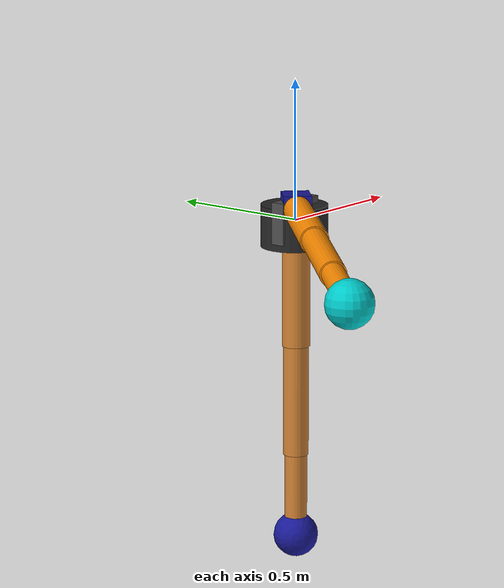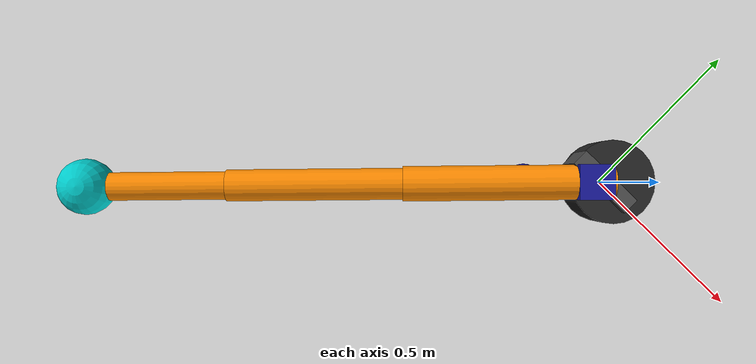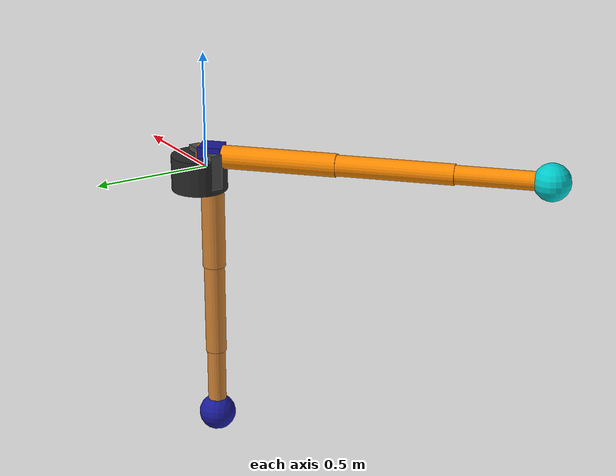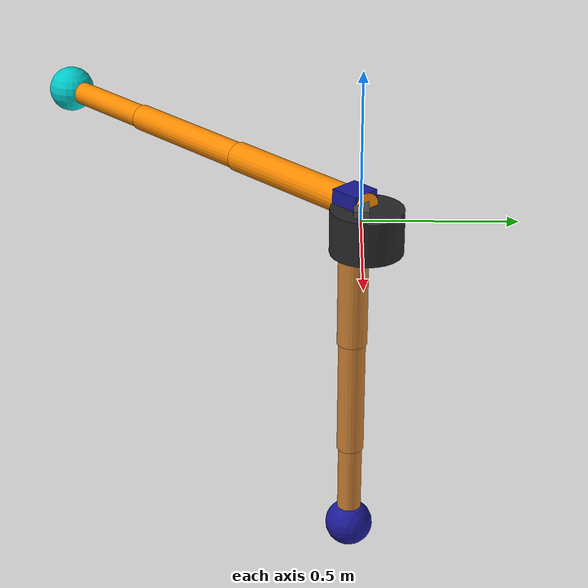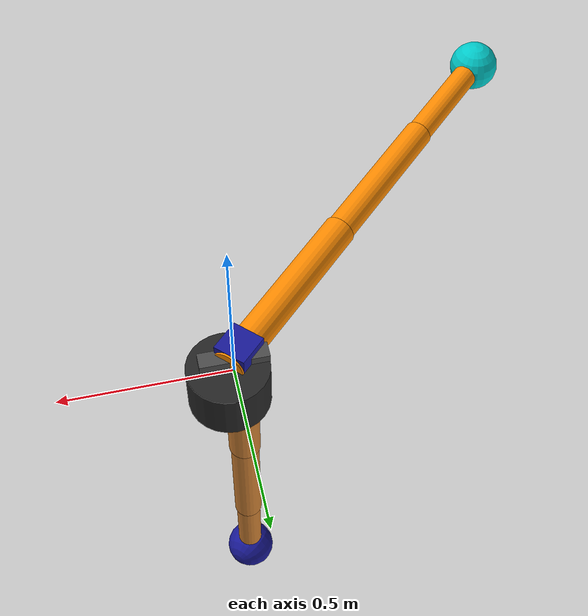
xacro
<?xml version="1.0"?>
<robot name="tengoo_2_finger_hand" xmlns:xacro="http://ros.org/wiki/xacro">
<xacro:include filename="$(find robot_description)/urdf/pulgar.urdf.xacro" />
<xacro:include filename="$(find robot_description)/urdf/indice.urdf.xacro" />

    <material name="palm_color"><color rgba="0.3 0.3 0.3 1"/></material>

    <link name="hand_base">
        <visual>
            <origin xyz="0 0 0" rpy="0 0 0"/>
            <geometry><box size="0.2 0.05 0.15"/></geometry>
            <material name="palm_color"/>
        </visual>
    </link>

    <xacro:pulgar prefix="pulgar_"/>

    <joint name="pulgar_fixed_joint" type="fixed">
        <parent link="hand_base"/>
        <child link="pulgar_base_link"/>
        <origin xyz="-0.02 -0.02 0.05" rpy="0 0 2.356"/>
    </joint>

    <xacro:indice prefix="indice_"/>

    <joint name="indice_fixed_joint" type="fixed">
        <parent link="hand_base"/>
        <child link="indice_base_link"/>
        <origin xyz="0.02 0.02 0.05" rpy="0 0 -0.785"/>
    </joint>

</robot>

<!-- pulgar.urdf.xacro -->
<robot name="thumb_finger_corrected" xmlns:xacro="http://ros.org/wiki/xacro">
<xacro:macro name="pulgar" params="prefix">

    <material name="${prefix}link_color"><color rgba="0.8 0.5 0.2 1"/></material>
    <material name="${prefix}joint_color"><color rgba="0.1 0.1 0.6 1"/></material>

    <link name="${prefix}base_link">
        <visual>
            <geometry><box size="0.1 0.1 0.1"/></geometry>
            <material name="${prefix}joint_color"/>
        </visual>
    </link>

    <link name="${prefix}q0_rotated_link"/>

    <joint name="${prefix}q0" type="revolute">
        <parent link="${prefix}base_link"/>
        <child link="${prefix}q0_rotated_link"/>
        <origin xyz="0 0 0" rpy="0 0 0"/>
        <axis xyz="0 0 1"/> <limit lower="-0.52" upper="0.52" effort="1.0" velocity="1.0"/>
    </joint>

    <link name="${prefix}link1">
        <visual>
            <origin xyz="0 -0.25 0" rpy="1.570796 0 0"/>
            <geometry><cylinder length="0.5" radius="0.05"/></geometry>
            <material name="${prefix}link_color"/>
        </visual>
    </link>

    <joint name="${prefix}q1" type="revolute">
        <parent link="${prefix}q0_rotated_link"/>
        <child link="${prefix}link1"/>
        <origin xyz="0 0 0" rpy="1.570796 0 0"/>
        <axis xyz="0 0 1"/> <limit lower="-1.57" upper="0.0" effort="1.0" velocity="1.0"/>
    </joint>

    <link name="${prefix}link2">
        <visual>
            <origin xyz="0 -0.2 0" rpy="1.570796 0 0"/>
            <geometry><cylinder length="0.4" radius="0.045"/></geometry>
            <material name="${prefix}link_color"/>
        </visual>
    </link>

    <joint name="${prefix}q2" type="revolute">
        <parent link="${prefix}link1"/>
        <child link="${prefix}link2"/>
        <origin xyz="0 -0.5 0" rpy="0 0 0"/>
        <axis xyz="0 0 1"/> <limit lower="-1.57" upper="0.0" effort="1.0" velocity="1.0"/>
    </joint>

    <link name="${prefix}link3">
        <visual>
            <origin xyz="0 -0.15 0" rpy="1.570796 0 0"/>
            <geometry><cylinder length="0.3" radius="0.04"/></geometry>
            <material name="${prefix}link_color"/>
        </visual>
    </link>

    <joint name="${prefix}q3" type="revolute">
        <parent link="${prefix}link2"/>
        <child link="${prefix}link3"/>
        <origin xyz="0 -0.4 0" rpy="0 0 0"/>
        <axis xyz="0 0 1"/> <limit lower="-1.57" upper="0.0" effort="1.0" velocity="1.0"/>
    </joint>

    <link name="${prefix}ee_link">
        <visual>
            <geometry><sphere radius="0.08"/></geometry>
            <material name="${prefix}joint_color"/>
        </visual>
    </link>

    <joint name="${prefix}tool0" type="fixed">
        <parent link="${prefix}link3"/>
        <child link="${prefix}ee_link"/>
        <origin xyz="0 -0.3 0" rpy="0 0 0"/>
    </joint>

</xacro:macro>
</robot>

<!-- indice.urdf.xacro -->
<robot name="indice_finger" xmlns:xacro="http://ros.org/wiki/xacro">
<xacro:macro name="indice" params="prefix">

  <material name="${prefix}orange"><color rgba="1 0.55 0 1"/></material>
  <material name="${prefix}dark"><color rgba="0.15 0.15 0.15 1"/></material>
  <material name="${prefix}cyan"><color rgba="0 0.8 0.8 1"/></material>

  <link name="${prefix}base_link">
    <visual>
      <origin xyz="0 0 -0.075" rpy="0 0 0"/>
      <geometry><cylinder length="0.15" radius="0.12"/></geometry>
      <material name="${prefix}dark"/>
    </visual>
  </link>

  <link name="${prefix}link1">
    <visual>
      <origin xyz="0 -0.3 0" rpy="1.57079632679 0 0"/>
      <geometry><cylinder length="0.60" radius="0.05"/></geometry>
      <material name="${prefix}orange"/>
    </visual>
  </link>

  <joint name="${prefix}q1" type="revolute">
    <parent link="${prefix}base_link"/>
    <child  link="${prefix}link1"/>
    <origin xyz="0 0 0" rpy="0 0 0"/>
    <axis xyz="1 0 0"/>
    <limit lower="-1.57" upper="1.57" effort="10" velocity="2.0"/>
  </joint>

  <link name="${prefix}link2">
    <visual>
      <origin xyz="0 -0.25 0" rpy="1.57079632679 0 0"/>
      <geometry><cylinder length="0.50" radius="0.045"/></geometry>
      <material name="${prefix}orange"/>
    </visual>
  </link>

  <joint name="${prefix}q2" type="revolute">
    <parent link="${prefix}link1"/>
    <child  link="${prefix}link2"/>
    <origin xyz="0 -0.60 0" rpy="0 0 0"/>
    <axis xyz="1 0 0"/>
    <limit lower="-1.57" upper="1.57" effort="10" velocity="2.0"/>
  </joint>

  <link name="${prefix}link3">
    <visual>
      <origin xyz="0 -0.20 0" rpy="1.57079632679 0 0"/>
      <geometry><cylinder length="0.40" radius="0.04"/></geometry>
      <material name="${prefix}orange"/>
    </visual>
  </link>

  <joint name="${prefix}q3" type="revolute">
    <parent link="${prefix}link2"/>
    <child  link="${prefix}link3"/>
    <origin xyz="0 -0.50 0" rpy="0 0 0"/>
    <axis xyz="1 0 0"/>
    <limit lower="-1.57" upper="1.57" effort="10" velocity="2.0"/>
  </joint>

  <link name="${prefix}ee_link">
    <visual>
      <origin xyz="0 0 0" rpy="0 0 0"/>
      <geometry><sphere radius="0.08"/></geometry>
      <material name="${prefix}cyan"/>
    </visual>
  </link>

  <joint name="${prefix}tool0" type="fixed">
    <parent link="${prefix}link3"/>
    <child  link="${prefix}ee_link"/>
    <origin xyz="0 -0.40 0" rpy="0 0 0"/>
  </joint>

</xacro:macro>
</robot>
